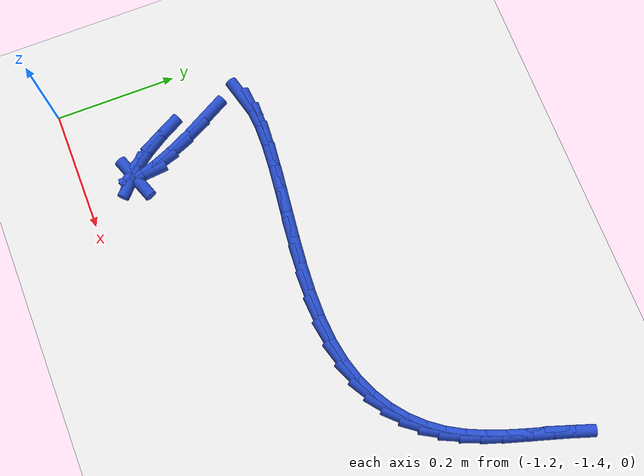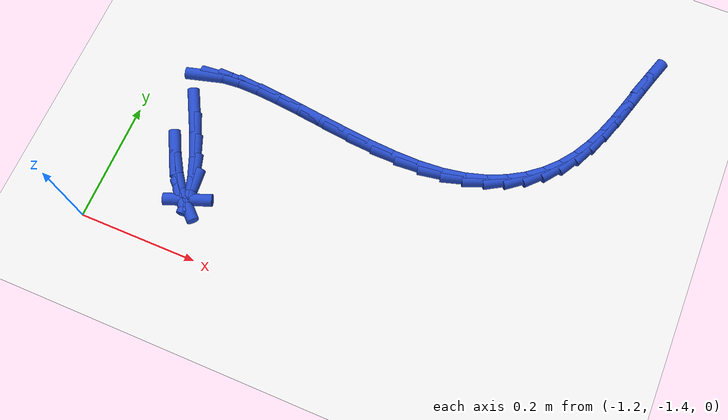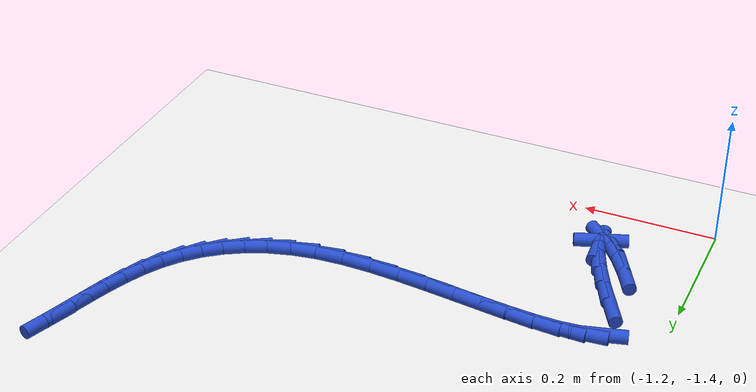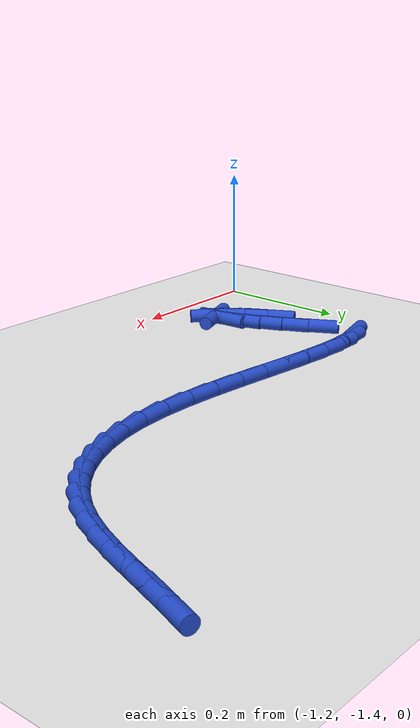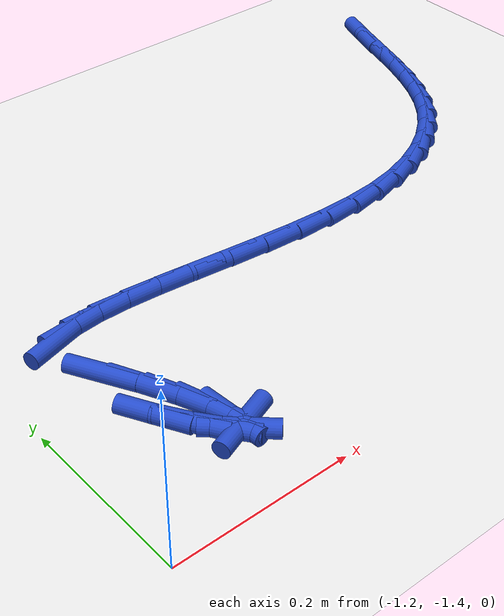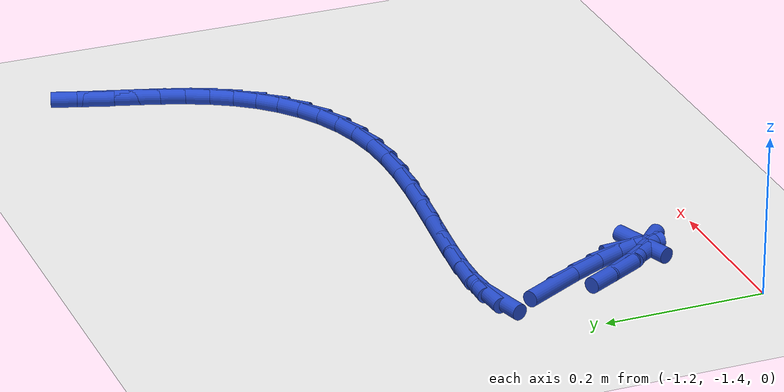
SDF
<sdf version="1.6">
 <world name="default">
  <model name="ground_plane">
   <static>1</static>
   <link name="link">
    <collision name="collision">
     <geometry><plane><normal>0 0 1</normal><size>100 100</size></plane></geometry>
     <surface><friction><ode><mu>100</mu><mu2>50</mu2></ode></friction></surface>
    </collision>
    <visual name="visual">
     <cast_shadows>0</cast_shadows>
     <geometry><plane><normal>0 0 1</normal><size>100 100</size></plane></geometry>
     <material>
      <script><uri>file://media/materials/scripts/gazebo.material</uri><name>Gazebo/WhiteGlow</name></script>
     </material>
    </visual>
   </link>
  </model>
  <model name="line">
   <link name="link_211">
    <pose>-1.1104669838925787 -1.17097928007494 0.01 0 1.57 -1.072707647342457</pose>
    <collision name="collision">
     <geometry><cylinder><radius>0.01</radius><length>0.08</length></cylinder></geometry>
    </collision>
    <visual name="visual">
     <material>
      <script><name>Gazebo/Blue</name><uri>file://media/materials/scripts/gazebo.material</uri></script>
     </material>
     <geometry><cylinder><radius>0.01</radius><length>0.08</length></cylinder></geometry>
    </visual>
   </link>
   <link name="link_212">
    <pose>-1.0893277920485818 -1.2098507126696278 0.01 0 1.57 -1.1264509021284759</pose>
    <collision name="collision">
     <geometry><cylinder><radius>0.01</radius><length>0.08</length></cylinder></geometry>
    </collision>
    <visual name="visual">
     <material>
      <script><name>Gazebo/Blue</name><uri>file://media/materials/scripts/gazebo.material</uri></script>
     </material>
     <geometry><cylinder><radius>0.01</radius><length>0.08</length></cylinder></geometry>
    </visual>
   </link>
   <link name="link_213">
    <pose>-1.0721940298558188 -1.2458384537573424 0.01 0 1.57 -1.1866722481516785</pose>
    <collision name="collision">
     <geometry><cylinder><radius>0.01</radius><length>0.08</length></cylinder></geometry>
    </collision>
    <visual name="visual">
     <material>
      <script><name>Gazebo/Blue</name><uri>file://media/materials/scripts/gazebo.material</uri></script>
     </material>
     <geometry><cylinder><radius>0.01</radius><length>0.08</length></cylinder></geometry>
    </visual>
   </link>
   <link name="link_214">
    <pose>-1.0597203715192909 -1.2766983673199659 0.01 0 1.57 -1.2749513188366854</pose>
    <collision name="collision">
     <geometry><cylinder><radius>0.01</radius><length>0.08</length></cylinder></geometry>
    </collision>
    <visual name="visual">
     <material>
      <script><name>Gazebo/Blue</name><uri>file://media/materials/scripts/gazebo.material</uri></script>
     </material>
     <geometry><cylinder><radius>0.01</radius><length>0.08</length></cylinder></geometry>
    </visual>
   </link>
   <link name="link_215">
    <pose>-1.0525614912440007 -1.3001863173393815 0.01 0 1.57 -1.4852615310873305</pose>
    <collision name="collision">
     <geometry><cylinder><radius>0.01</radius><length>0.08</length></cylinder></geometry>
    </collision>
    <visual name="visual">
     <material>
      <script><name>Gazebo/Blue</name><uri>file://media/materials/scripts/gazebo.material</uri></script>
     </material>
     <geometry><cylinder><radius>0.01</radius><length>0.08</length></cylinder></geometry>
    </visual>
   </link>
   <link name="link_216">
    <pose>-1.05137206323495 -1.3140581677974712 0.01 0 1.57 0.35450557831392676</pose>
    <collision name="collision">
     <geometry><cylinder><radius>0.01</radius><length>0.08</length></cylinder></geometry>
    </collision>
    <visual name="visual">
     <material>
      <script><name>Gazebo/Blue</name><uri>file://media/materials/scripts/gazebo.material</uri></script>
     </material>
     <geometry><cylinder><radius>0.01</radius><length>0.08</length></cylinder></geometry>
    </visual>
   </link>
   <link name="link_217">
    <pose>-1.0568067616971402 -1.316069782676117 0.01 0 1.57 -0.7514537807644112</pose>
    <collision name="collision">
     <geometry><cylinder><radius>0.01</radius><length>0.08</length></cylinder></geometry>
    </collision>
    <visual name="visual">
     <material>
      <script><name>Gazebo/Blue</name><uri>file://media/materials/scripts/gazebo.material</uri></script>
     </material>
     <geometry><cylinder><radius>0.01</radius><length>0.08</length></cylinder></geometry>
    </visual>
   </link>
   <link name="link_218">
    <pose>-1.0692292945567843 -1.3044632161748058 0.01 0 1.57 -0.9239249426539811</pose>
    <collision name="collision">
     <geometry><cylinder><radius>0.01</radius><length>0.08</length></cylinder></geometry>
    </collision>
    <visual name="visual">
     <material>
      <script><name>Gazebo/Blue</name><uri>file://media/materials/scripts/gazebo.material</uri></script>
     </material>
     <geometry><cylinder><radius>0.01</radius><length>0.08</length></cylinder></geometry>
    </visual>
   </link>
   <link name="link_219">
    <pose>-1.086692993878954 -1.2813410459438932 0.01 0 1.57 -1.0058372735869534</pose>
    <collision name="collision">
     <geometry><cylinder><radius>0.01</radius><length>0.08</length></cylinder></geometry>
    </collision>
    <visual name="visual">
     <material>
      <script><name>Gazebo/Blue</name><uri>file://media/materials/scripts/gazebo.material</uri></script>
     </material>
     <geometry><cylinder><radius>0.01</radius><length>0.08</length></cylinder></geometry>
    </visual>
   </link>
   <link name="link_220">
    <pose>-1.1061495952507034 -1.2506465627005179 0.01 0 1.57 -1.078694261486093</pose>
    <collision name="collision">
     <geometry><cylinder><radius>0.01</radius><length>0.08</length></cylinder></geometry>
    </collision>
    <visual name="visual">
     <material>
      <script><name>Gazebo/Blue</name><uri>file://media/materials/scripts/gazebo.material</uri></script>
     </material>
     <geometry><cylinder><radius>0.01</radius><length>0.08</length></cylinder></geometry>
    </visual>
   </link>
   <link name="link_226">
    <pose>-1.11628206131083 -1.1017909184866648 0.01 0 1.57 0.2629893585497852</pose>
    <collision name="collision">
     <geometry><cylinder><radius>0.01</radius><length>0.08</length></cylinder></geometry>
    </collision>
    <visual name="visual">
     <material>
      <script><name>Gazebo/Blue</name><uri>file://media/materials/scripts/gazebo.material</uri></script>
     </material>
     <geometry><cylinder><radius>0.01</radius><length>0.08</length></cylinder></geometry>
    </visual>
   </link>
   <link name="link_227">
    <pose>-1.0921146955274488 -1.0952844592732727 0.01 0 1.57 0.08671112653833005</pose>
    <collision name="collision">
     <geometry><cylinder><radius>0.01</radius><length>0.08</length></cylinder></geometry>
    </collision>
    <visual name="visual">
     <material>
      <script><name>Gazebo/Blue</name><uri>file://media/materials/scripts/gazebo.material</uri></script>
     </material>
     <geometry><cylinder><radius>0.01</radius><length>0.08</length></cylinder></geometry>
    </visual>
   </link>
   <link name="link_228">
    <pose>-1.0623038481649034 -1.0926930290254429 0.01 0 1.57 -0.015548706749652474</pose>
    <collision name="collision">
     <geometry><cylinder><radius>0.01</radius><length>0.08</length></cylinder></geometry>
    </collision>
    <visual name="visual">
     <material>
      <script><name>Gazebo/Blue</name><uri>file://media/materials/scripts/gazebo.material</uri></script>
     </material>
     <geometry><cylinder><radius>0.01</radius><length>0.08</length></cylinder></geometry>
    </visual>
   </link>
   <link name="link_229">
    <pose>-1.027748177797294 -1.0932303683140152 0.01 0 1.57 -0.07485238447096461</pose>
    <collision name="collision">
     <geometry><cylinder><radius>0.01</radius><length>0.08</length></cylinder></geometry>
    </collision>
    <visual name="visual">
     <material>
      <script><name>Gazebo/Blue</name><uri>file://media/materials/scripts/gazebo.material</uri></script>
     </material>
     <geometry><cylinder><radius>0.01</radius><length>0.08</length></cylinder></geometry>
    </visual>
   </link>
   <link name="link_230">
    <pose>-0.9893463429987209 -1.0961102177098307 0.01 0 1.57 -0.10687467146583302</pose>
    <collision name="collision">
     <geometry><cylinder><radius>0.01</radius><length>0.08</length></cylinder></geometry>
    </collision>
    <visual name="visual">
     <material>
      <script><name>Gazebo/Blue</name><uri>file://media/materials/scripts/gazebo.material</uri></script>
     </material>
     <geometry><cylinder><radius>0.01</radius><length>0.08</length></cylinder></geometry>
    </visual>
   </link>
   <link name="link_231">
    <pose>-0.947997002343284 -1.1005463177837296 0.01 0 1.57 -0.11939050898915783</pose>
    <collision name="collision">
     <geometry><cylinder><radius>0.01</radius><length>0.08</length></cylinder></geometry>
    </collision>
    <visual name="visual">
     <material>
      <script><name>Gazebo/Blue</name><uri>file://media/materials/scripts/gazebo.material</uri></script>
     </material>
     <geometry><cylinder><radius>0.01</radius><length>0.08</length></cylinder></geometry>
    </visual>
   </link>
   <link name="link_232">
    <pose>-0.9045988144050835 -1.105752409106553 0.01 0 1.57 -0.11597580568983186</pose>
    <collision name="collision">
     <geometry><cylinder><radius>0.01</radius><length>0.08</length></cylinder></geometry>
    </collision>
    <visual name="visual">
     <material>
      <script><name>Gazebo/Blue</name><uri>file://media/materials/scripts/gazebo.material</uri></script>
     </material>
     <geometry><cylinder><radius>0.01</radius><length>0.08</length></cylinder></geometry>
    </visual>
   </link>
   <link name="link_233">
    <pose>-0.8600504377582197 -1.1109422322491407 0.01 0 1.57 -0.09761962929477797</pose>
    <collision name="collision">
     <geometry><cylinder><radius>0.01</radius><length>0.08</length></cylinder></geometry>
    </collision>
    <visual name="visual">
     <material>
      <script><name>Gazebo/Blue</name><uri>file://media/materials/scripts/gazebo.material</uri></script>
     </material>
     <geometry><cylinder><radius>0.01</radius><length>0.08</length></cylinder></geometry>
    </visual>
   </link>
   <link name="link_234">
    <pose>-0.8152505309767912 -1.115329527782334 0.01 0 1.57 -0.06329771531509272</pose>
    <collision name="collision">
     <geometry><cylinder><radius>0.01</radius><length>0.08</length></cylinder></geometry>
    </collision>
    <visual name="visual">
     <material>
      <script><name>Gazebo/Blue</name><uri>file://media/materials/scripts/gazebo.material</uri></script>
     </material>
     <geometry><cylinder><radius>0.01</radius><length>0.08</length></cylinder></geometry>
    </visual>
   </link>
   <link name="link_235">
    <pose>-0.771097752634901 -1.1181280362769734 0.01 0 1.57 -0.009938464825053514</pose>
    <collision name="collision">
     <geometry><cylinder><radius>0.01</radius><length>0.08</length></cylinder></geometry>
    </collision>
    <visual name="visual">
     <material>
      <script><name>Gazebo/Blue</name><uri>file://media/materials/scripts/gazebo.material</uri></script>
     </material>
     <geometry><cylinder><radius>0.01</radius><length>0.08</length></cylinder></geometry>
    </visual>
   </link>
   <link name="link_236">
    <pose>-0.7284907613066477 -1.118551498303899 0.01 0 1.57 0.06803578898791358</pose>
    <collision name="collision">
     <geometry><cylinder><radius>0.01</radius><length>0.08</length></cylinder></geometry>
    </collision>
    <visual name="visual">
     <material>
      <script><name>Gazebo/Blue</name><uri>file://media/materials/scripts/gazebo.material</uri></script>
     </material>
     <geometry><cylinder><radius>0.01</radius><length>0.08</length></cylinder></geometry>
    </visual>
   </link>
   <link name="link_237">
    <pose>-0.6883272402657703 -1.1158147174246669 0.01 0 1.57 0.17120718703142823</pose>
    <collision name="collision">
     <geometry><cylinder><radius>0.01</radius><length>0.08</length></cylinder></geometry>
    </collision>
    <visual name="visual">
     <material>
      <script><name>Gazebo/Blue</name><uri>file://media/materials/scripts/gazebo.material</uri></script>
     </material>
     <geometry><cylinder><radius>0.01</radius><length>0.08</length></cylinder></geometry>
    </visual>
   </link>
   <link name="link_238">
    <pose>-0.6512549233914677 -1.109404919826629 0.01 0 1.57 0.28573042364836293</pose>
    <collision name="collision">
     <geometry><cylinder><radius>0.01</radius><length>0.08</length></cylinder></geometry>
    </collision>
    <visual name="visual">
     <material>
      <script><name>Gazebo/Blue</name><uri>file://media/materials/scripts/gazebo.material</uri></script>
     </material>
     <geometry><cylinder><radius>0.01</radius><length>0.08</length></cylinder></geometry>
    </visual>
   </link>
   <link name="link_239">
    <pose>-0.6173410069035564 -1.0994420661505866 0.01 0 1.57 0.408153350946249</pose>
    <collision name="collision">
     <geometry><cylinder><radius>0.01</radius><length>0.08</length></cylinder></geometry>
    </collision>
    <visual name="visual">
     <material>
      <script><name>Gazebo/Blue</name><uri>file://media/materials/scripts/gazebo.material</uri></script>
     </material>
     <geometry><cylinder><radius>0.01</radius><length>0.08</length></cylinder></geometry>
    </visual>
   </link>
   <link name="link_240">
    <pose>-0.5865704656521569 -1.0861357310228867 0.01 0 1.57 0.5365515665680534</pose>
    <collision name="collision">
     <geometry><cylinder><radius>0.01</radius><length>0.08</length></cylinder></geometry>
    </collision>
    <visual name="visual">
     <material>
      <script><name>Gazebo/Blue</name><uri>file://media/materials/scripts/gazebo.material</uri></script>
     </material>
     <geometry><cylinder><radius>0.01</radius><length>0.08</length></cylinder></geometry>
    </visual>
   </link>
   <link name="link_241">
    <pose>-0.5589282744873897 -1.0696954890698753 0.01 0 1.57 0.6682813760078797</pose>
    <collision name="collision">
     <geometry><cylinder><radius>0.01</radius><length>0.08</length></cylinder></geometry>
    </collision>
    <visual name="visual">
     <material>
      <script><name>Gazebo/Blue</name><uri>file://media/materials/scripts/gazebo.material</uri></script>
     </material>
     <geometry><cylinder><radius>0.01</radius><length>0.08</length></cylinder></geometry>
    </visual>
   </link>
   <link name="link_242">
    <pose>-0.5343994082593757 -1.0503309149178996 0.01 0 1.57 0.8003078101010399</pose>
    <collision name="collision">
     <geometry><cylinder><radius>0.01</radius><length>0.08</length></cylinder></geometry>
    </collision>
    <visual name="visual">
     <material>
      <script><name>Gazebo/Blue</name><uri>file://media/materials/scripts/gazebo.material</uri></script>
     </material>
     <geometry><cylinder><radius>0.01</radius><length>0.08</length></cylinder></geometry>
    </visual>
   </link>
   <link name="link_243">
    <pose>-0.5129688418182348 -1.028251583193305 0.01 0 1.57 0.929670729815264</pose>
    <collision name="collision">
     <geometry><cylinder><radius>0.01</radius><length>0.08</length></cylinder></geometry>
    </collision>
    <visual name="visual">
     <material>
      <script><name>Gazebo/Blue</name><uri>file://media/materials/scripts/gazebo.material</uri></script>
     </material>
     <geometry><cylinder><radius>0.01</radius><length>0.08</length></cylinder></geometry>
    </visual>
   </link>
   <link name="link_244">
    <pose>-0.4946215461024209 -1.0036670700575285 0.01 0 1.57 1.0500454870995029</pose>
    <collision name="collision">
     <geometry><cylinder><radius>0.01</radius><length>0.08</length></cylinder></geometry>
    </collision>
    <visual name="visual">
     <material>
      <script><name>Gazebo/Blue</name><uri>file://media/materials/scripts/gazebo.material</uri></script>
     </material>
     <geometry><cylinder><radius>0.01</radius><length>0.08</length></cylinder></geometry>
    </visual>
   </link>
   <link name="link_245">
    <pose>-0.4792296132333484 -0.9768312496657924 0.01 0 1.57 1.1459214651260656</pose>
    <collision name="collision">
     <geometry><cylinder><radius>0.01</radius><length>0.08</length></cylinder></geometry>
    </collision>
    <visual name="visual">
     <material>
      <script><name>Gazebo/Blue</name><uri>file://media/materials/scripts/gazebo.material</uri></script>
     </material>
     <geometry><cylinder><radius>0.01</radius><length>0.08</length></cylinder></geometry>
    </visual>
   </link>
   <link name="link_246">
    <pose>-0.46625698355334966 -0.9481581706458074 0.01 0 1.57 1.214680306276881</pose>
    <collision name="collision">
     <geometry><cylinder><radius>0.01</radius><length>0.08</length></cylinder></geometry>
    </collision>
    <visual name="visual">
     <material>
      <script><name>Gazebo/Blue</name><uri>file://media/materials/scripts/gazebo.material</uri></script>
     </material>
     <geometry><cylinder><radius>0.01</radius><length>0.08</length></cylinder></geometry>
    </visual>
   </link>
   <link name="link_247">
    <pose>-0.4550753771733879 -0.9180980723946731 0.01 0 1.57 1.2581736983548808</pose>
    <collision name="collision">
     <geometry><cylinder><radius>0.01</radius><length>0.08</length></cylinder></geometry>
    </collision>
    <visual name="visual">
     <material>
      <script><name>Gazebo/Blue</name><uri>file://media/materials/scripts/gazebo.material</uri></script>
     </material>
     <geometry><cylinder><radius>0.01</radius><length>0.08</length></cylinder></geometry>
    </visual>
   </link>
   <link name="link_248">
    <pose>-0.44505651420442705 -0.8871011943094893 0.01 0 1.57 1.2781925669761502</pose>
    <collision name="collision">
     <geometry><cylinder><radius>0.01</radius><length>0.08</length></cylinder></geometry>
    </collision>
    <visual name="visual">
     <material>
      <script><name>Gazebo/Blue</name><uri>file://media/materials/scripts/gazebo.material</uri></script>
     </material>
     <geometry><cylinder><radius>0.01</radius><length>0.08</length></cylinder></geometry>
    </visual>
   </link>
   <link name="link_249">
    <pose>-0.4355721147574303 -0.8556177757873553 0.01 0 1.57 1.2757836117919783</pose>
    <collision name="collision">
     <geometry><cylinder><radius>0.01</radius><length>0.08</length></cylinder></geometry>
    </collision>
    <visual name="visual">
     <material>
      <script><name>Gazebo/Blue</name><uri>file://media/materials/scripts/gazebo.material</uri></script>
     </material>
     <geometry><cylinder><radius>0.01</radius><length>0.08</length></cylinder></geometry>
    </visual>
   </link>
   <link name="link_250">
    <pose>-0.42599389894336126 -0.8240980562253702 0.01 0 1.57 1.2510227011946828</pose>
    <collision name="collision">
     <geometry><cylinder><radius>0.01</radius><length>0.08</length></cylinder></geometry>
    </collision>
    <visual name="visual">
     <material>
      <script><name>Gazebo/Blue</name><uri>file://media/materials/scripts/gazebo.material</uri></script>
     </material>
     <geometry><cylinder><radius>0.01</radius><length>0.08</length></cylinder></geometry>
    </visual>
   </link>
  </model>
 </world>
</sdf>
